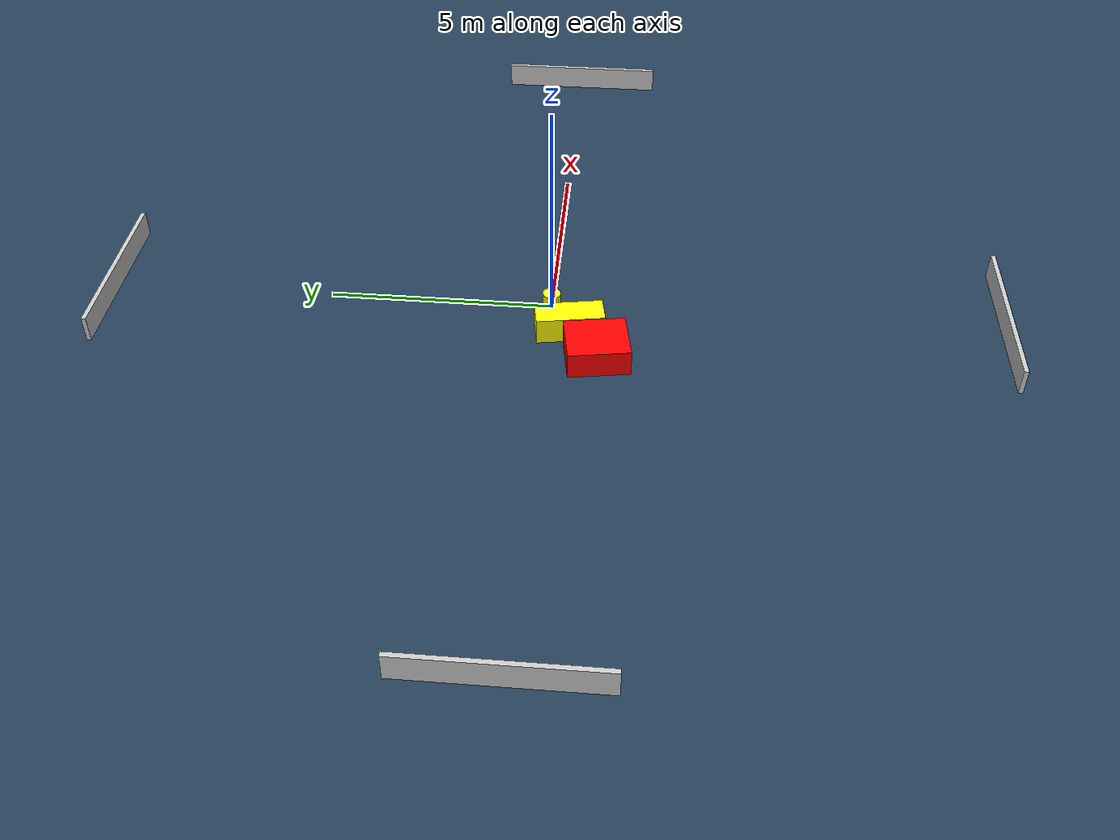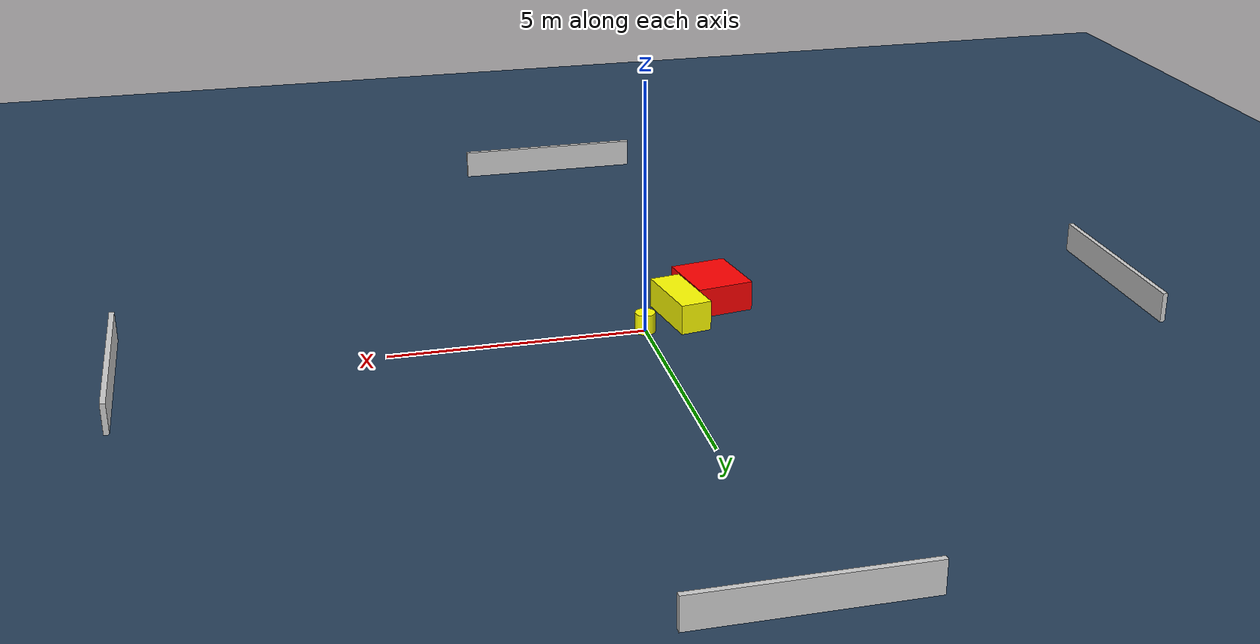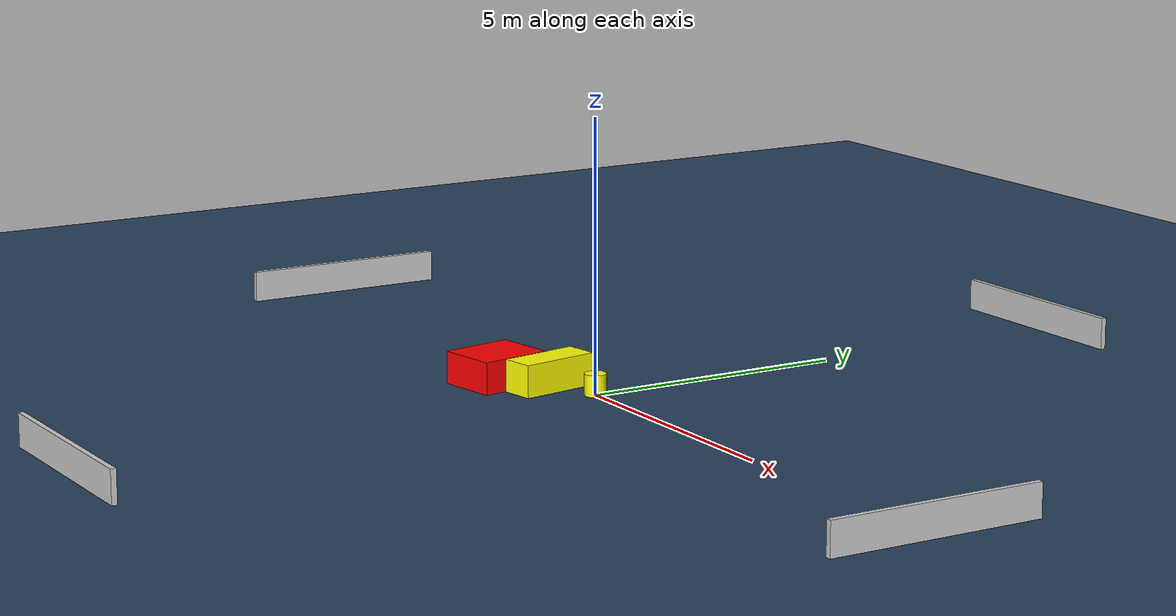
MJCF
<?xml version="1.0" ?>
<mujoco model="generated_environment">
  <option timestep="0.01" integrator="RK4" cone="elliptic"/>
  <default>
    <geom density="1"/>
  </default>
  <asset>
    <texture builtin="gradient" height="3072" name="skybox" rgb1="0.3 0.5 0.7" rgb2="0 0 0" type="skybox" width="512"/>
    <texture builtin="checker" height="300" name="groundplane" rgb1="0.2 0.3 0.4" rgb2="0.1 0.2 0.3" type="2d" width="300"/>
    <material name="groundplane" reflectance="0.2" texrepeat="5 5" texture="groundplane"/>
  </asset>
  <worldbody>
    <light dir="0 0 -1" directional="true" pos="0 0 1.5"/>
    <geom condim="3" friction="0.5 0.005 0.001" material="groundplane" name="floor" pos="0 0 0" size="0 0 0.05" type="plane"/>
    <body name="walls">
      <geom name="wall_1" condim="4" pos="-10.0 0.0 0.3" rgba="0.800000011920929 0.800000011920929 0.800000011920929 1.0" size="0.05 2.0 0.3" type="box"/>
      <geom name="wall_2" condim="4" pos="10.0 0.0 0.3" rgba="0.800000011920929 0.800000011920929 0.800000011920929 1.0" size="0.05 2.0 0.3" type="box"/>
      <geom name="wall_3" condim="4" pos="0.0 -10.0 0.3" rgba="0.800000011920929 0.800000011920929 0.800000011920929 1.0" size="2.0 0.05 0.3" type="box"/>
      <geom name="wall_4" condim="4" pos="0.0 10.0 0.3" rgba="0.800000011920929 0.800000011920929 0.800000011920929 1.0" size="2.0 0.05 0.3" type="box"/>
    </body>
    <body name="robot">
      <joint name="joint_x" type="slide" pos="0 0 0" axis="1 0 0"/>
      <joint name="joint_y" type="slide" pos="0 0 0" axis="0 1 0"/>
      <geom name="robot" type="cylinder" pos="0.0 0.0 0.2" size="0.2 0.2 0.0" mass="5.0" friction="1.0 0.005 0.0001" condim="4" rgba="1.0 1.0 0.0 1.0"/>
    </body>
    <body name="obstacle_1_movable">
      <geom name="obstacle_1_movable" condim="4" pos="-0.829281826081982 -0.461127702248625 0.3" euler="0 0 99.58017560015399" friction="0.0 0.005 0.001" rgba="1.0 1.0 0.0 1.0" size="0.7539368322058342 0.3106719440896645 0.3" type="box" mass="0.1"/>
      <joint type="free"/>
    </body>
    <body name="obstacle_2_static">
      <geom name="obstacle_2_static" condim="4" pos="-1.6444310347856104 -1.1041795191247608 0.3" euler="0 0 189.22373637204666" friction="0.0 0.005 0.001" rgba="1.0 0.0 0.0 1.0" size="0.5761874425183423 0.6782317659163182 0.3" type="box"/>
    </body>
  </worldbody>
  <actuator>
    <motor name="actuator_x" joint="joint_x" gear="1" ctrlrange="-1 1"/>
    <motor name="actuator_y" joint="joint_y" gear="1" ctrlrange="-1 1"/>
  </actuator>
</mujoco>
